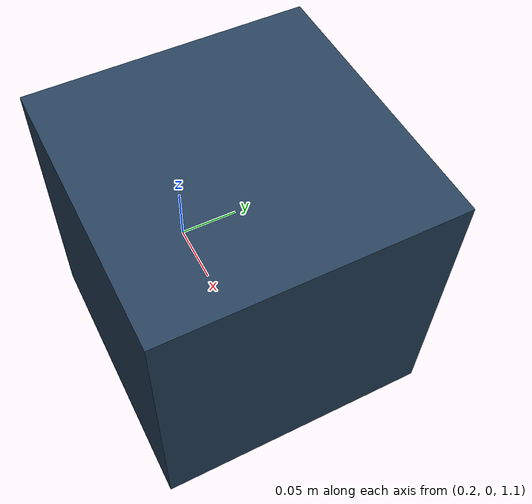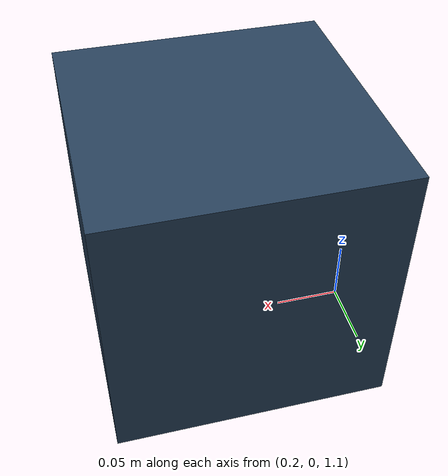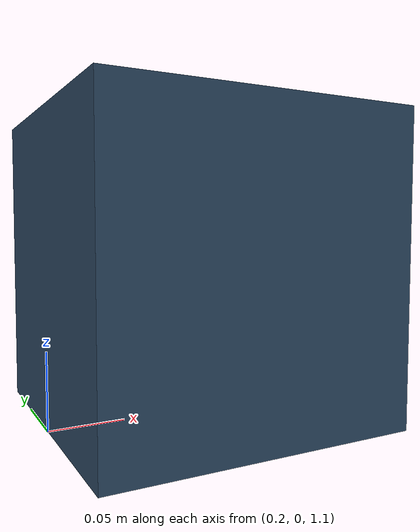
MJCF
<?xml version="1.0"?>
<mujoco model="cube">
    <statistic center="0 0 0.55" extent="1.1"/>
    <visual>
        <map znear="0.01" zfar="10"/>
    </visual>
    <default>
        <geom rgba="0 0 1 1" condim="3"/>
    </default>
    <worldbody>

        <!-- 添加物体 -->
        <body name="cube" pos="0.3 0 1.2">
            <freejoint name="cube_joint"/>
            <geom name="cube_geom" type="box" size="0.1 0.1 0.1" density="1000" rgba="0.15 0.25 0.35 1" contype="1" conaffinity="1" />
        </body>

    </worldbody>
</mujoco>
